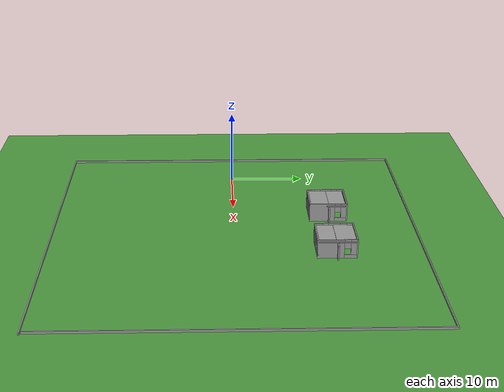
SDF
<sdf version="1.6">
 <world name="default">
  <model name="ground_plane">
   <static>1</static>
   <link name="link">
    <collision name="collision">
     <geometry><plane><normal>0 0 1</normal><size>500 500</size></plane></geometry>
     <surface><friction><ode><mu>100</mu><mu2>50</mu2></ode></friction></surface>
    </collision>
    <visual name="grass">
     <pose>0 0 -0.1 0 -0 0</pose>
     <cast_shadows>0</cast_shadows>
     <geometry><plane><normal>0 0 1</normal><size>100 100</size></plane></geometry>
     <material>
      <script><uri>file://media/materials/scripts/gazebo.material</uri><name>Gazebo/Grass</name></script>
     </material>
    </visual>
   </link>
  </model>
  <model name="wall50m">
   <pose>17.9974 0.0206 0 0 -0 0</pose>
   <link name="Wall_4">
    <collision name="Wall_4_Collision">
     <geometry><box><size>50.5 0.15 0.3</size></box></geometry>
     <pose>0 0 0.15 0 -0 0</pose>
    </collision>
    <visual name="Wall_4_Visual">
     <pose>0 0 0.15 0 -0 0</pose>
     <geometry><box><size>50.5 0.15 0.3</size></box></geometry>
     <material>
      <script><uri>file://media/materials/scripts/gazebo.material</uri><name>Gazebo/Grey</name></script>
      <ambient>1 1 1 1</ambient>
     </material>
     <meta><layer>0</layer></meta>
    </visual>
    <pose>2e-06 -23.675 0 0 -0 3.14159</pose>
   </link>
   <link name="Wall_5">
    <collision name="Wall_5_Collision">
     <geometry><box><size>47.5 0.15 0.3</size></box></geometry>
     <pose>0 0 0.15 0 -0 0</pose>
    </collision>
    <visual name="Wall_5_Visual">
     <pose>0 0 0.15 0 -0 0</pose>
     <geometry><box><size>47.5 0.15 0.3</size></box></geometry>
     <material>
      <script><uri>file://media/materials/scripts/gazebo.material</uri><name>Gazebo/Grey</name></script>
      <ambient>1 1 1 1</ambient>
     </material>
     <meta><layer>0</layer></meta>
    </visual>
    <pose>-25.175 -0 0 0 -0 1.5708</pose>
   </link>
   <link name="Wall_6">
    <collision name="Wall_6_Collision">
     <geometry><box><size>50.25 0.15 0.3</size></box></geometry>
     <pose>0 0 0.15 0 -0 0</pose>
    </collision>
    <visual name="Wall_6_Visual">
     <pose>0 0 0.15 0 -0 0</pose>
     <geometry><box><size>50.25 0.15 0.3</size></box></geometry>
     <material>
      <script><uri>file://media/materials/scripts/gazebo.material</uri><name>Gazebo/Grey</name></script>
      <ambient>1 1 1 1</ambient>
     </material>
     <meta><layer>0</layer></meta>
    </visual>
    <pose>-0.124998 23.675 0 0 -0 0</pose>
   </link>
   <link name="Wall_7">
    <collision name="Wall_7_Collision">
     <geometry><box><size>47.25 0.15 0.3</size></box></geometry>
     <pose>0 0 0.15 0 -0 0</pose>
    </collision>
    <visual name="Wall_7_Visual">
     <pose>0 0 0.15 0 -0 0</pose>
     <geometry><box><size>47.25 0.15 0.3</size></box></geometry>
     <material>
      <script><uri>file://media/materials/scripts/gazebo.material</uri><name>Gazebo/Grey</name></script>
      <ambient>1 1 1 1</ambient>
     </material>
     <meta><layer>0</layer></meta>
    </visual>
    <pose>24.925 0.125 0 0 -0 -1.5708</pose>
   </link>
   <static>1</static>
  </model>
  <model name="House">
   <pose>12.4099 12.5509 0 0 -0 0</pose>
   <link name="Door_0">
    <collision name="Door_0_Collision">
     <geometry><box><size>0.9 0.17 2</size></box></geometry>
     <pose>0 0 1 0 -0 0</pose>
    </collision>
    <visual name="Door_0_Visual">
     <pose>0 0 1 0 -0 0</pose>
     <geometry><box><size>0.9 0.17 2</size></box></geometry>
     <material>
      <script><uri>file://media/materials/scripts/gazebo.material</uri><name>Gazebo/Grey</name></script>
     </material>
    </visual>
    <pose>2.72267 0.051323 0 0 -0 0</pose>
   </link>
   <link name="Wall_2">
    <pose>0 2.425 0 0 -0 3.14159</pose>
    <visual name="Wall_2_Visual_0">
     <pose>-2.01333 0 1.25 0 -0 0</pose>
     <geometry><box><size>0.973339 0.15 2.5</size></box></geometry>
     <material>
      <script><uri>file://media/materials/scripts/gazebo.material</uri><name>Gazebo/Grey</name></script>
      <ambient>1 1 1 1</ambient>
     </material>
     <meta><layer>0</layer></meta>
    </visual>
    <collision name="Wall_2_Collision_0">
     <geometry><box><size>0.973339 0.15 2.5</size></box></geometry>
     <pose>-2.01333 0 1.25 0 -0 0</pose>
    </collision>
    <visual name="Wall_2_Visual_1">
     <pose>0.48667 0 0.25 0 -0 0</pose>
     <geometry><box><size>4.02666 0.15 0.5</size></box></geometry>
     <material>
      <script><uri>file://media/materials/scripts/gazebo.material</uri><name>Gazebo/Grey</name></script>
      <ambient>1 1 1 1</ambient>
     </material>
     <meta><layer>0</layer></meta>
    </visual>
    <collision name="Wall_2_Collision_1">
     <geometry><box><size>4.02666 0.15 0.5</size></box></geometry>
     <pose>0.48667 0 0.25 0 -0 0</pose>
    </collision>
    <visual name="Wall_2_Visual_2">
     <pose>-0.062653 0 1.5 0 -0 0</pose>
     <geometry><box><size>1.32802 0.15 2</size></box></geometry>
     <material>
      <script><uri>file://media/materials/scripts/gazebo.material</uri><name>Gazebo/Grey</name></script>
      <ambient>1 1 1 1</ambient>
     </material>
     <meta><layer>0</layer></meta>
    </visual>
    <collision name="Wall_2_Collision_2">
     <geometry><box><size>1.32802 0.15 2</size></box></geometry>
     <pose>-0.062653 0 1.5 0 -0 0</pose>
    </collision>
    <visual name="Wall_2_Visual_3">
     <pose>1.95068 0 1.5 0 -0 0</pose>
     <geometry><box><size>1.09865 0.15 2</size></box></geometry>
     <material>
      <script><uri>file://media/materials/scripts/gazebo.material</uri><name>Gazebo/Grey</name></script>
      <ambient>1 1 1 1</ambient>
     </material>
     <meta><layer>0</layer></meta>
    </visual>
    <collision name="Wall_2_Collision_3">
     <geometry><box><size>1.09865 0.15 2</size></box></geometry>
     <pose>1.95068 0 1.5 0 -0 0</pose>
    </collision>
    <visual name="Wall_2_Visual_4">
     <pose>-1.12666 0 1.9 0 -0 0</pose>
     <geometry><box><size>0.8 0.15 1.2</size></box></geometry>
     <material>
      <script><uri>file://media/materials/scripts/gazebo.material</uri><name>Gazebo/Grey</name></script>
      <ambient>1 1 1 1</ambient>
     </material>
     <meta><layer>0</layer></meta>
    </visual>
    <collision name="Wall_2_Collision_4">
     <geometry><box><size>0.8 0.15 1.2</size></box></geometry>
     <pose>-1.12666 0 1.9 0 -0 0</pose>
    </collision>
    <visual name="Wall_2_Visual_5">
     <pose>1.00135 0 1.9 0 -0 0</pose>
     <geometry><box><size>0.8 0.15 1.2</size></box></geometry>
     <material>
      <script><uri>file://media/materials/scripts/gazebo.material</uri><name>Gazebo/Grey</name></script>
      <ambient>1 1 1 1</ambient>
     </material>
     <meta><layer>0</layer></meta>
    </visual>
    <collision name="Wall_2_Collision_5">
     <geometry><box><size>0.8 0.15 1.2</size></box></geometry>
     <pose>1.00135 0 1.9 0 -0 0</pose>
    </collision>
   </link>
   <link name="Wall_3">
    <pose>-2.425 0 0 0 -0 -1.5708</pose>
    <visual name="Wall_3_Visual_0">
     <pose>-2.06087 0 1.25 0 -0 0</pose>
     <geometry><box><size>0.878268 0.15 2.5</size></box></geometry>
     <material>
      <script><uri>file://media/materials/scripts/gazebo.material</uri><name>Gazebo/Grey</name></script>
      <ambient>1 1 1 1</ambient>
     </material>
     <meta><layer>0</layer></meta>
    </visual>
    <collision name="Wall_3_Collision_0">
     <geometry><box><size>0.878268 0.15 2.5</size></box></geometry>
     <pose>-2.06087 0 1.25 0 -0 0</pose>
    </collision>
    <visual name="Wall_3_Visual_1">
     <pose>0.439134 0 0.25 0 -0 0</pose>
     <geometry><box><size>4.12173 0.15 0.5</size></box></geometry>
     <material>
      <script><uri>file://media/materials/scripts/gazebo.material</uri><name>Gazebo/Grey</name></script>
      <ambient>1 1 1 1</ambient>
     </material>
     <meta><layer>0</layer></meta>
    </visual>
    <collision name="Wall_3_Collision_1">
     <geometry><box><size>4.12173 0.15 0.5</size></box></geometry>
     <pose>0.439134 0 0.25 0 -0 0</pose>
    </collision>
    <visual name="Wall_3_Visual_2">
     <pose>-0.091224 0 1.5 0 -0 0</pose>
     <geometry><box><size>1.46102 0.15 2</size></box></geometry>
     <material>
      <script><uri>file://media/materials/scripts/gazebo.material</uri><name>Gazebo/Grey</name></script>
      <ambient>1 1 1 1</ambient>
     </material>
     <meta><layer>0</layer></meta>
    </visual>
    <collision name="Wall_3_Collision_2">
     <geometry><box><size>1.46102 0.15 2</size></box></geometry>
     <pose>-0.091224 0 1.5 0 -0 0</pose>
    </collision>
    <visual name="Wall_3_Visual_3">
     <pose>1.96964 0 1.5 0 -0 0</pose>
     <geometry><box><size>1.06072 0.15 2</size></box></geometry>
     <material>
      <script><uri>file://media/materials/scripts/gazebo.material</uri><name>Gazebo/Grey</name></script>
      <ambient>1 1 1 1</ambient>
     </material>
     <meta><layer>0</layer></meta>
    </visual>
    <collision name="Wall_3_Collision_3">
     <geometry><box><size>1.06072 0.15 2</size></box></geometry>
     <pose>1.96964 0 1.5 0 -0 0</pose>
    </collision>
    <visual name="Wall_3_Visual_4">
     <pose>-1.22173 0 1.9 0 -0 0</pose>
     <geometry><box><size>0.8 0.15 1.2</size></box></geometry>
     <material>
      <script><uri>file://media/materials/scripts/gazebo.material</uri><name>Gazebo/Grey</name></script>
      <ambient>1 1 1 1</ambient>
     </material>
     <meta><layer>0</layer></meta>
    </visual>
    <collision name="Wall_3_Collision_4">
     <geometry><box><size>0.8 0.15 1.2</size></box></geometry>
     <pose>-1.22173 0 1.9 0 -0 0</pose>
    </collision>
    <visual name="Wall_3_Visual_5">
     <pose>1.03929 0 1.9 0 -0 0</pose>
     <geometry><box><size>0.8 0.15 1.2</size></box></geometry>
     <material>
      <script><uri>file://media/materials/scripts/gazebo.material</uri><name>Gazebo/Grey</name></script>
      <ambient>1 1 1 1</ambient>
     </material>
     <meta><layer>0</layer></meta>
    </visual>
    <collision name="Wall_3_Collision_5">
     <geometry><box><size>0.8 0.15 1.2</size></box></geometry>
     <pose>1.03929 0 1.9 0 -0 0</pose>
    </collision>
   </link>
   <link name="Wall_4">
    <pose>0 -2.425 0 0 -0 0</pose>
    <visual name="Wall_4_Visual_0">
     <pose>-1.96398 0 1.25 0 -0 0</pose>
     <geometry><box><size>1.07204 0.15 2.5</size></box></geometry>
     <material>
      <script><uri>file://media/materials/scripts/gazebo.material</uri><name>Gazebo/Grey</name></script>
      <ambient>1 1 1 1</ambient>
     </material>
     <meta><layer>0</layer></meta>
    </visual>
    <collision name="Wall_4_Collision_0">
     <geometry><box><size>1.07204 0.15 2.5</size></box></geometry>
     <pose>-1.96398 0 1.25 0 -0 0</pose>
    </collision>
    <visual name="Wall_4_Visual_1">
     <pose>0.536022 0 0.25 0 -0 0</pose>
     <geometry><box><size>3.92796 0.15 0.5</size></box></geometry>
     <material>
      <script><uri>file://media/materials/scripts/gazebo.material</uri><name>Gazebo/Grey</name></script>
      <ambient>1 1 1 1</ambient>
     </material>
     <meta><layer>0</layer></meta>
    </visual>
    <collision name="Wall_4_Collision_1">
     <geometry><box><size>3.92796 0.15 0.5</size></box></geometry>
     <pose>0.536022 0 0.25 0 -0 0</pose>
    </collision>
    <visual name="Wall_4_Visual_2">
     <pose>-0.083648 0 1.5 0 -0 0</pose>
     <geometry><box><size>1.08861 0.15 2</size></box></geometry>
     <material>
      <script><uri>file://media/materials/scripts/gazebo.material</uri><name>Gazebo/Grey</name></script>
      <ambient>1 1 1 1</ambient>
     </material>
     <meta><layer>0</layer></meta>
    </visual>
    <collision name="Wall_4_Collision_2">
     <geometry><box><size>1.08861 0.15 2</size></box></geometry>
     <pose>-0.083648 0 1.5 0 -0 0</pose>
    </collision>
    <visual name="Wall_4_Visual_3">
     <pose>1.88033 0 1.5 0 -0 0</pose>
     <geometry><box><size>1.23934 0.15 2</size></box></geometry>
     <material>
      <script><uri>file://media/materials/scripts/gazebo.material</uri><name>Gazebo/Grey</name></script>
      <ambient>1 1 1 1</ambient>
     </material>
     <meta><layer>0</layer></meta>
    </visual>
    <collision name="Wall_4_Collision_3">
     <geometry><box><size>1.23934 0.15 2</size></box></geometry>
     <pose>1.88033 0 1.5 0 -0 0</pose>
    </collision>
    <visual name="Wall_4_Visual_4">
     <pose>-1.02796 0 1.9 0 -0 0</pose>
     <geometry><box><size>0.8 0.15 1.2</size></box></geometry>
     <material>
      <script><uri>file://media/materials/scripts/gazebo.material</uri><name>Gazebo/Grey</name></script>
      <ambient>1 1 1 1</ambient>
     </material>
     <meta><layer>0</layer></meta>
    </visual>
    <collision name="Wall_4_Collision_4">
     <geometry><box><size>0.8 0.15 1.2</size></box></geometry>
     <pose>-1.02796 0 1.9 0 -0 0</pose>
    </collision>
    <visual name="Wall_4_Visual_5">
     <pose>0.860659 0 1.9 0 -0 0</pose>
     <geometry><box><size>0.8 0.15 1.2</size></box></geometry>
     <material>
      <script><uri>file://media/materials/scripts/gazebo.material</uri><name>Gazebo/Grey</name></script>
      <ambient>1 1 1 1</ambient>
     </material>
     <meta><layer>0</layer></meta>
    </visual>
    <collision name="Wall_4_Collision_5">
     <geometry><box><size>0.8 0.15 1.2</size></box></geometry>
     <pose>0.860659 0 1.9 0 -0 0</pose>
    </collision>
   </link>
   <link name="Wall_5">
    <pose>2.425 0 0 0 -0 1.5708</pose>
    <visual name="Wall_5_Visual_0">
     <pose>-0.839134 0 1.25 0 -0 0</pose>
     <geometry><box><size>3.32173 0.15 2.5</size></box></geometry>
     <material>
      <script><uri>file://media/materials/scripts/gazebo.material</uri><name>Gazebo/Grey</name></script>
      <ambient>1 1 1 1</ambient>
     </material>
     <meta><layer>0</layer></meta>
    </visual>
    <collision name="Wall_5_Collision_0">
     <geometry><box><size>3.32173 0.15 2.5</size></box></geometry>
     <pose>-0.839134 0 1.25 0 -0 0</pose>
    </collision>
    <visual name="Wall_5_Visual_1">
     <pose>1.66087 0 0.25 0 -0 0</pose>
     <geometry><box><size>1.67827 0.15 0.5</size></box></geometry>
     <material>
      <script><uri>file://media/materials/scripts/gazebo.material</uri><name>Gazebo/Grey</name></script>
      <ambient>1 1 1 1</ambient>
     </material>
     <meta><layer>0</layer></meta>
    </visual>
    <collision name="Wall_5_Collision_1">
     <geometry><box><size>1.67827 0.15 0.5</size></box></geometry>
     <pose>1.66087 0 0.25 0 -0 0</pose>
    </collision>
    <visual name="Wall_5_Visual_2">
     <pose>2.06087 0 1.5 0 -0 0</pose>
     <geometry><box><size>0.878268 0.15 2</size></box></geometry>
     <material>
      <script><uri>file://media/materials/scripts/gazebo.material</uri><name>Gazebo/Grey</name></script>
      <ambient>1 1 1 1</ambient>
     </material>
     <meta><layer>0</layer></meta>
    </visual>
    <collision name="Wall_5_Collision_2">
     <geometry><box><size>0.878268 0.15 2</size></box></geometry>
     <pose>2.06087 0 1.5 0 -0 0</pose>
    </collision>
    <visual name="Wall_5_Visual_3">
     <pose>1.22173 0 1.9 0 -0 0</pose>
     <geometry><box><size>0.8 0.15 1.2</size></box></geometry>
     <material>
      <script><uri>file://media/materials/scripts/gazebo.material</uri><name>Gazebo/Grey</name></script>
      <ambient>1 1 1 1</ambient>
     </material>
     <meta><layer>0</layer></meta>
    </visual>
    <collision name="Wall_5_Collision_3">
     <geometry><box><size>0.8 0.15 1.2</size></box></geometry>
     <pose>1.22173 0 1.9 0 -0 0</pose>
    </collision>
   </link>
   <static>1</static>
  </model>
  <model name="5m_clone">
   <pose>12.3572 10.0911 2.23803 -1.57239 0 0</pose>
   <link name="Wall_0">
    <collision name="Wall_0_Collision">
     <geometry><box><size>5 0.15 2.5</size></box></geometry>
     <pose>0 0 1.25 0 -0 0</pose>
    </collision>
    <visual name="Wall_0_Visual">
     <pose>0 0 1.25 0 -0 0</pose>
     <geometry><box><size>5 0.15 2.5</size></box></geometry>
     <material>
      <script><uri>file://media/materials/scripts/gazebo.material</uri><name>Gazebo/Grey</name></script>
      <ambient>1 1 1 1</ambient>
     </material>
     <meta><layer>0</layer></meta>
    </visual>
   </link>
   <static>1</static>
  </model>
  <model name="House_0">
   <pose>23.3033 12.5521 0 0 -0 0</pose>
   <link name="Door_0">
    <collision name="Door_0_Collision">
     <geometry><box><size>0.9 0.17 2</size></box></geometry>
     <pose>0 0 1 0 -0 0</pose>
    </collision>
    <visual name="Door_0_Visual">
     <pose>0 0 1 0 -0 0</pose>
     <geometry><box><size>0.9 0.17 2</size></box></geometry>
     <material>
      <script><uri>file://media/materials/scripts/gazebo.material</uri><name>Gazebo/Grey</name></script>
     </material>
    </visual>
    <pose>2.72267 0.051323 0 0 -0 0</pose>
   </link>
   <link name="Wall_2">
    <pose>0 2.425 0 0 -0 3.14159</pose>
    <visual name="Wall_2_Visual_0">
     <pose>-2.01333 0 1.25 0 -0 0</pose>
     <geometry><box><size>0.973339 0.15 2.5</size></box></geometry>
     <material>
      <script><uri>file://media/materials/scripts/gazebo.material</uri><name>Gazebo/Grey</name></script>
      <ambient>1 1 1 1</ambient>
     </material>
     <meta><layer>0</layer></meta>
    </visual>
    <collision name="Wall_2_Collision_0">
     <geometry><box><size>0.973339 0.15 2.5</size></box></geometry>
     <pose>-2.01333 0 1.25 0 -0 0</pose>
    </collision>
    <visual name="Wall_2_Visual_1">
     <pose>0.48667 0 0.25 0 -0 0</pose>
     <geometry><box><size>4.02666 0.15 0.5</size></box></geometry>
     <material>
      <script><uri>file://media/materials/scripts/gazebo.material</uri><name>Gazebo/Grey</name></script>
      <ambient>1 1 1 1</ambient>
     </material>
     <meta><layer>0</layer></meta>
    </visual>
    <collision name="Wall_2_Collision_1">
     <geometry><box><size>4.02666 0.15 0.5</size></box></geometry>
     <pose>0.48667 0 0.25 0 -0 0</pose>
    </collision>
    <visual name="Wall_2_Visual_2">
     <pose>-0.062653 0 1.5 0 -0 0</pose>
     <geometry><box><size>1.32802 0.15 2</size></box></geometry>
     <material>
      <script><uri>file://media/materials/scripts/gazebo.material</uri><name>Gazebo/Grey</name></script>
      <ambient>1 1 1 1</ambient>
     </material>
     <meta><layer>0</layer></meta>
    </visual>
    <collision name="Wall_2_Collision_2">
     <geometry><box><size>1.32802 0.15 2</size></box></geometry>
     <pose>-0.062653 0 1.5 0 -0 0</pose>
    </collision>
    <visual name="Wall_2_Visual_3">
     <pose>1.95068 0 1.5 0 -0 0</pose>
     <geometry><box><size>1.09865 0.15 2</size></box></geometry>
     <material>
      <script><uri>file://media/materials/scripts/gazebo.material</uri><name>Gazebo/Grey</name></script>
      <ambient>1 1 1 1</ambient>
     </material>
     <meta><layer>0</layer></meta>
    </visual>
    <collision name="Wall_2_Collision_3">
     <geometry><box><size>1.09865 0.15 2</size></box></geometry>
     <pose>1.95068 0 1.5 0 -0 0</pose>
    </collision>
    <visual name="Wall_2_Visual_4">
     <pose>-1.12666 0 1.9 0 -0 0</pose>
     <geometry><box><size>0.8 0.15 1.2</size></box></geometry>
     <material>
      <script><uri>file://media/materials/scripts/gazebo.material</uri><name>Gazebo/Grey</name></script>
      <ambient>1 1 1 1</ambient>
     </material>
     <meta><layer>0</layer></meta>
    </visual>
    <collision name="Wall_2_Collision_4">
     <geometry><box><size>0.8 0.15 1.2</size></box></geometry>
     <pose>-1.12666 0 1.9 0 -0 0</pose>
    </collision>
    <visual name="Wall_2_Visual_5">
     <pose>1.00135 0 1.9 0 -0 0</pose>
     <geometry><box><size>0.8 0.15 1.2</size></box></geometry>
     <material>
      <script><uri>file://media/materials/scripts/gazebo.material</uri><name>Gazebo/Grey</name></script>
      <ambient>1 1 1 1</ambient>
     </material>
     <meta><layer>0</layer></meta>
    </visual>
    <collision name="Wall_2_Collision_5">
     <geometry><box><size>0.8 0.15 1.2</size></box></geometry>
     <pose>1.00135 0 1.9 0 -0 0</pose>
    </collision>
   </link>
   <link name="Wall_3">
    <pose>-2.425 0 0 0 -0 -1.5708</pose>
    <visual name="Wall_3_Visual_0">
     <pose>-2.06087 0 1.25 0 -0 0</pose>
     <geometry><box><size>0.878268 0.15 2.5</size></box></geometry>
     <material>
      <script><uri>file://media/materials/scripts/gazebo.material</uri><name>Gazebo/Grey</name></script>
      <ambient>1 1 1 1</ambient>
     </material>
     <meta><layer>0</layer></meta>
    </visual>
    <collision name="Wall_3_Collision_0">
     <geometry><box><size>0.878268 0.15 2.5</size></box></geometry>
     <pose>-2.06087 0 1.25 0 -0 0</pose>
    </collision>
    <visual name="Wall_3_Visual_1">
     <pose>0.439134 0 0.25 0 -0 0</pose>
     <geometry><box><size>4.12173 0.15 0.5</size></box></geometry>
     <material>
      <script><uri>file://media/materials/scripts/gazebo.material</uri><name>Gazebo/Grey</name></script>
      <ambient>1 1 1 1</ambient>
     </material>
     <meta><layer>0</layer></meta>
    </visual>
    <collision name="Wall_3_Collision_1">
     <geometry><box><size>4.12173 0.15 0.5</size></box></geometry>
     <pose>0.439134 0 0.25 0 -0 0</pose>
    </collision>
    <visual name="Wall_3_Visual_2">
     <pose>-0.091224 0 1.5 0 -0 0</pose>
     <geometry><box><size>1.46102 0.15 2</size></box></geometry>
     <material>
      <script><uri>file://media/materials/scripts/gazebo.material</uri><name>Gazebo/Grey</name></script>
      <ambient>1 1 1 1</ambient>
     </material>
     <meta><layer>0</layer></meta>
    </visual>
    <collision name="Wall_3_Collision_2">
     <geometry><box><size>1.46102 0.15 2</size></box></geometry>
     <pose>-0.091224 0 1.5 0 -0 0</pose>
    </collision>
    <visual name="Wall_3_Visual_3">
     <pose>1.96964 0 1.5 0 -0 0</pose>
     <geometry><box><size>1.06072 0.15 2</size></box></geometry>
     <material>
      <script><uri>file://media/materials/scripts/gazebo.material</uri><name>Gazebo/Grey</name></script>
      <ambient>1 1 1 1</ambient>
     </material>
     <meta><layer>0</layer></meta>
    </visual>
    <collision name="Wall_3_Collision_3">
     <geometry><box><size>1.06072 0.15 2</size></box></geometry>
     <pose>1.96964 0 1.5 0 -0 0</pose>
    </collision>
    <visual name="Wall_3_Visual_4">
     <pose>-1.22173 0 1.9 0 -0 0</pose>
     <geometry><box><size>0.8 0.15 1.2</size></box></geometry>
     <material>
      <script><uri>file://media/materials/scripts/gazebo.material</uri><name>Gazebo/Grey</name></script>
      <ambient>1 1 1 1</ambient>
     </material>
     <meta><layer>0</layer></meta>
    </visual>
    <collision name="Wall_3_Collision_4">
     <geometry><box><size>0.8 0.15 1.2</size></box></geometry>
     <pose>-1.22173 0 1.9 0 -0 0</pose>
    </collision>
    <visual name="Wall_3_Visual_5">
     <pose>1.03929 0 1.9 0 -0 0</pose>
     <geometry><box><size>0.8 0.15 1.2</size></box></geometry>
     <material>
      <script><uri>file://media/materials/scripts/gazebo.material</uri><name>Gazebo/Grey</name></script>
      <ambient>1 1 1 1</ambient>
     </material>
     <meta><layer>0</layer></meta>
    </visual>
    <collision name="Wall_3_Collision_5">
     <geometry><box><size>0.8 0.15 1.2</size></box></geometry>
     <pose>1.03929 0 1.9 0 -0 0</pose>
    </collision>
   </link>
   <link name="Wall_4">
    <pose>0 -2.425 0 0 -0 0</pose>
    <visual name="Wall_4_Visual_0">
     <pose>-1.96398 0 1.25 0 -0 0</pose>
     <geometry><box><size>1.07204 0.15 2.5</size></box></geometry>
     <material>
      <script><uri>file://media/materials/scripts/gazebo.material</uri><name>Gazebo/Grey</name></script>
      <ambient>1 1 1 1</ambient>
     </material>
     <meta><layer>0</layer></meta>
    </visual>
    <collision name="Wall_4_Collision_0">
     <geometry><box><size>1.07204 0.15 2.5</size></box></geometry>
     <pose>-1.96398 0 1.25 0 -0 0</pose>
    </collision>
    <visual name="Wall_4_Visual_1">
     <pose>0.536022 0 0.25 0 -0 0</pose>
     <geometry><box><size>3.92796 0.15 0.5</size></box></geometry>
     <material>
      <script><uri>file://media/materials/scripts/gazebo.material</uri><name>Gazebo/Grey</name></script>
      <ambient>1 1 1 1</ambient>
     </material>
     <meta><layer>0</layer></meta>
    </visual>
    <collision name="Wall_4_Collision_1">
     <geometry><box><size>3.92796 0.15 0.5</size></box></geometry>
     <pose>0.536022 0 0.25 0 -0 0</pose>
    </collision>
    <visual name="Wall_4_Visual_2">
     <pose>-0.083648 0 1.5 0 -0 0</pose>
     <geometry><box><size>1.08861 0.15 2</size></box></geometry>
     <material>
      <script><uri>file://media/materials/scripts/gazebo.material</uri><name>Gazebo/Grey</name></script>
      <ambient>1 1 1 1</ambient>
     </material>
     <meta><layer>0</layer></meta>
    </visual>
    <collision name="Wall_4_Collision_2">
     <geometry><box><size>1.08861 0.15 2</size></box></geometry>
     <pose>-0.083648 0 1.5 0 -0 0</pose>
    </collision>
    <visual name="Wall_4_Visual_3">
     <pose>1.88033 0 1.5 0 -0 0</pose>
     <geometry><box><size>1.23934 0.15 2</size></box></geometry>
     <material>
      <script><uri>file://media/materials/scripts/gazebo.material</uri><name>Gazebo/Grey</name></script>
      <ambient>1 1 1 1</ambient>
     </material>
     <meta><layer>0</layer></meta>
    </visual>
    <collision name="Wall_4_Collision_3">
     <geometry><box><size>1.23934 0.15 2</size></box></geometry>
     <pose>1.88033 0 1.5 0 -0 0</pose>
    </collision>
    <visual name="Wall_4_Visual_4">
     <pose>-1.02796 0 1.9 0 -0 0</pose>
     <geometry><box><size>0.8 0.15 1.2</size></box></geometry>
     <material>
      <script><uri>file://media/materials/scripts/gazebo.material</uri><name>Gazebo/Grey</name></script>
      <ambient>1 1 1 1</ambient>
     </material>
     <meta><layer>0</layer></meta>
    </visual>
    <collision name="Wall_4_Collision_4">
     <geometry><box><size>0.8 0.15 1.2</size></box></geometry>
     <pose>-1.02796 0 1.9 0 -0 0</pose>
    </collision>
    <visual name="Wall_4_Visual_5">
     <pose>0.860659 0 1.9 0 -0 0</pose>
     <geometry><box><size>0.8 0.15 1.2</size></box></geometry>
     <material>
      <script><uri>file://media/materials/scripts/gazebo.material</uri><name>Gazebo/Grey</name></script>
      <ambient>1 1 1 1</ambient>
     </material>
     <meta><layer>0</layer></meta>
    </visual>
    <collision name="Wall_4_Collision_5">
     <geometry><box><size>0.8 0.15 1.2</size></box></geometry>
     <pose>0.860659 0 1.9 0 -0 0</pose>
    </collision>
   </link>
   <link name="Wall_5">
    <pose>2.425 0 0 0 -0 1.5708</pose>
    <visual name="Wall_5_Visual_0">
     <pose>-0.839134 0 1.25 0 -0 0</pose>
     <geometry><box><size>3.32173 0.15 2.5</size></box></geometry>
     <material>
      <script><uri>file://media/materials/scripts/gazebo.material</uri><name>Gazebo/Grey</name></script>
      <ambient>1 1 1 1</ambient>
     </material>
     <meta><layer>0</layer></meta>
    </visual>
    <collision name="Wall_5_Collision_0">
     <geometry><box><size>3.32173 0.15 2.5</size></box></geometry>
     <pose>-0.839134 0 1.25 0 -0 0</pose>
    </collision>
    <visual name="Wall_5_Visual_1">
     <pose>1.66087 0 0.25 0 -0 0</pose>
     <geometry><box><size>1.67827 0.15 0.5</size></box></geometry>
     <material>
      <script><uri>file://media/materials/scripts/gazebo.material</uri><name>Gazebo/Grey</name></script>
      <ambient>1 1 1 1</ambient>
     </material>
     <meta><layer>0</layer></meta>
    </visual>
    <collision name="Wall_5_Collision_1">
     <geometry><box><size>1.67827 0.15 0.5</size></box></geometry>
     <pose>1.66087 0 0.25 0 -0 0</pose>
    </collision>
    <visual name="Wall_5_Visual_2">
     <pose>2.06087 0 1.5 0 -0 0</pose>
     <geometry><box><size>0.878268 0.15 2</size></box></geometry>
     <material>
      <script><uri>file://media/materials/scripts/gazebo.material</uri><name>Gazebo/Grey</name></script>
      <ambient>1 1 1 1</ambient>
     </material>
     <meta><layer>0</layer></meta>
    </visual>
    <collision name="Wall_5_Collision_2">
     <geometry><box><size>0.878268 0.15 2</size></box></geometry>
     <pose>2.06087 0 1.5 0 -0 0</pose>
    </collision>
    <visual name="Wall_5_Visual_3">
     <pose>1.22173 0 1.9 0 -0 0</pose>
     <geometry><box><size>0.8 0.15 1.2</size></box></geometry>
     <material>
      <script><uri>file://media/materials/scripts/gazebo.material</uri><name>Gazebo/Grey</name></script>
      <ambient>1 1 1 1</ambient>
     </material>
     <meta><layer>0</layer></meta>
    </visual>
    <collision name="Wall_5_Collision_3">
     <geometry><box><size>0.8 0.15 1.2</size></box></geometry>
     <pose>1.22173 0 1.9 0 -0 0</pose>
    </collision>
   </link>
   <static>1</static>
  </model>
  <model name="5m_clone_3">
   <pose>23.4218 12.7144 2.17512 1.55349 -0 0</pose>
   <link name="Wall_0">
    <collision name="Wall_0_Collision">
     <geometry><box><size>5 0.15 2.5</size></box></geometry>
     <pose>0 0 1.25 0 -0 0</pose>
    </collision>
    <visual name="Wall_0_Visual">
     <pose>0 0 1.25 0 -0 0</pose>
     <geometry><box><size>5 0.15 2.5</size></box></geometry>
     <material>
      <script><uri>file://media/materials/scripts/gazebo.material</uri><name>Gazebo/Grey</name></script>
      <ambient>1 1 1 1</ambient>
     </material>
     <meta><layer>0</layer></meta>
    </visual>
   </link>
   <static>1</static>
  </model>
  <model name="5m_clone_4">
   <pose>23.4107 14.9003 2.17512 1.55349 -0 0</pose>
   <link name="Wall_0">
    <collision name="Wall_0_Collision">
     <geometry><box><size>5 0.15 2.5</size></box></geometry>
     <pose>0 0 1.25 0 -0 0</pose>
    </collision>
    <visual name="Wall_0_Visual">
     <pose>0 0 1.25 0 -0 0</pose>
     <geometry><box><size>5 0.15 2.5</size></box></geometry>
     <material>
      <script><uri>file://media/materials/scripts/gazebo.material</uri><name>Gazebo/Grey</name></script>
      <ambient>1 1 1 1</ambient>
     </material>
     <meta><layer>0</layer></meta>
    </visual>
   </link>
   <static>1</static>
  </model>
  <model name="5m_clone_5">
   <pose>12.5262 14.8116 2.17512 1.55349 -0 0</pose>
   <link name="Wall_0">
    <collision name="Wall_0_Collision">
     <geometry><box><size>5 0.15 2.5</size></box></geometry>
     <pose>0 0 1.25 0 -0 0</pose>
    </collision>
    <visual name="Wall_0_Visual">
     <pose>0 0 1.25 0 -0 0</pose>
     <geometry><box><size>5 0.15 2.5</size></box></geometry>
     <material>
      <script><uri>file://media/materials/scripts/gazebo.material</uri><name>Gazebo/Grey</name></script>
      <ambient>1 1 1 1</ambient>
     </material>
     <meta><layer>0</layer></meta>
    </visual>
   </link>
   <static>1</static>
  </model>
 </world>
</sdf>
